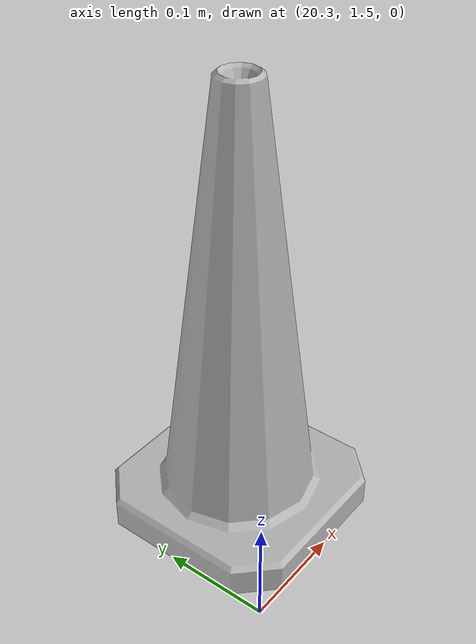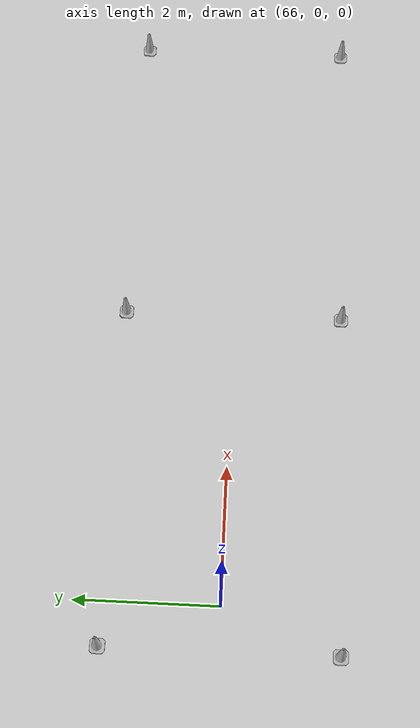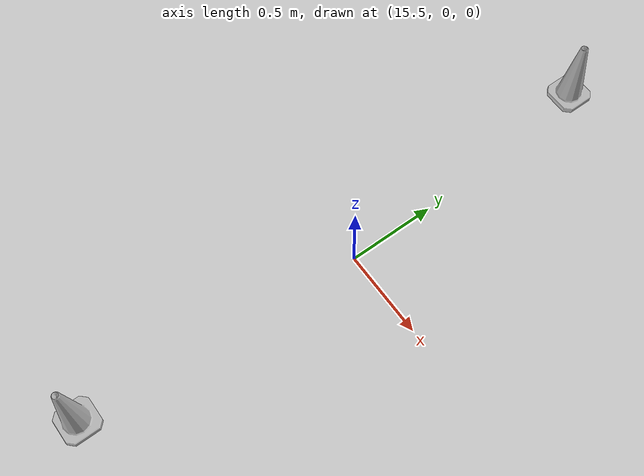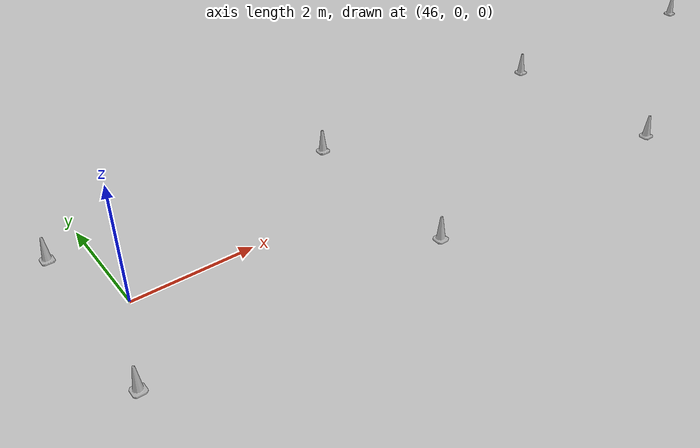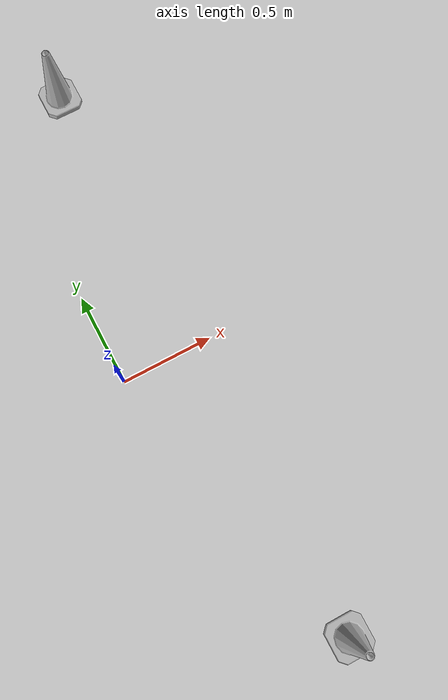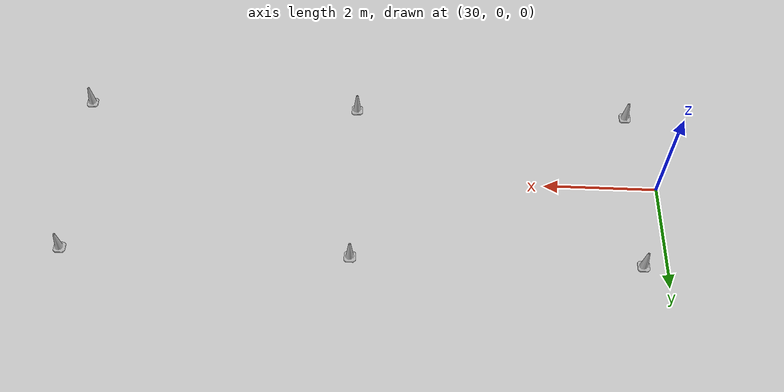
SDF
<sdf version="1.6">
 <world name="default">
  <light name="sun" type="directional">
   <pose>0 0 10 0 -0 0</pose>
   <diffuse>0.8 0.8 0.8 1</diffuse>
   <specular>0.2 0.2 0.2 1</specular>
   <attenuation>
    <range>1000</range>
    <constant>0.9</constant>
    <linear>0.01</linear>
    <quadratic>0.001</quadratic>
   </attenuation>
   <direction>-0.5 0.1 -0.9</direction>
  </light>
  <model name="ground_plane">
   <static>1</static>
   <link name="link">
    <collision name="collision">
     <geometry><plane><normal>0 0 1</normal><size>100 100</size></plane></geometry>
     <surface><friction><ode><mu>100</mu><mu2>50</mu2></ode></friction></surface>
    </collision>
    <visual name="visual">
     <cast_shadows>0</cast_shadows>
     <geometry><plane><normal>0 0 1</normal><size>100 100</size></plane></geometry>
     <material>
      <script><uri>file://media/materials/scripts/gazebo.material</uri><name>Gazebo/Grey</name></script>
     </material>
    </visual>
   </link>
  </model>
  <gravity>0 0 -9.8</gravity>
  <magnetic_field>6e-06 2.3e-05 -4.2e-05</magnetic_field>
  <atmosphere type="adiabatic"/>
  <physics name="default_physics" default="0" type="ode">
   <max_step_size>0.001</max_step_size>
   <real_time_factor>1</real_time_factor>
   <real_time_update_rate>1000</real_time_update_rate>
  </physics>
  <scene><ambient>0.4 0.4 0.4 1</ambient><background>0.7 0.7 0.7 1</background><shadows>1</shadows></scene>
  <spherical_coordinates>
   <surface_model>EARTH_WGS84</surface_model>
   <latitude_deg>0</latitude_deg>
   <longitude_deg>0</longitude_deg>
   <elevation>0</elevation>
   <heading_deg>0</heading_deg>
  </spherical_coordinates>
  <model name="Construction Cone">
   <link name="link">
    <collision name="collision">
     <geometry>
      <mesh><scale>4 4 4</scale><uri>model://construction_cone/meshes/construction_cone.dae</uri></mesh>
     </geometry>
    </collision>
    <visual name="visual">
     <geometry>
      <mesh><scale>4 4 4</scale><uri>model://construction_cone/meshes/construction_cone.dae</uri></mesh>
     </geometry>
    </visual>
    <inertial>
     <inertia><ixx>1</ixx><ixy>0</ixy><ixz>0</ixz><iyy>1</iyy><iyz>0</iyz><izz>1</izz></inertia>
     <mass>1</mass>
    </inertial>
   </link>
   <pose>0.4 1.6 -5e-06 1e-06 -0 0</pose>
  </model>
  <model name="Construction Cone_0">
   <link name="link">
    <collision name="collision">
     <geometry>
      <mesh><scale>4 4 4</scale><uri>model://construction_cone/meshes/construction_cone.dae</uri></mesh>
     </geometry>
    </collision>
    <visual name="visual">
     <geometry>
      <mesh><scale>4 4 4</scale><uri>model://construction_cone/meshes/construction_cone.dae</uri></mesh>
     </geometry>
    </visual>
    <inertial>
     <inertia><ixx>1</ixx><ixy>0</ixy><ixz>0</ixz><iyy>1</iyy><iyz>0</iyz><izz>1</izz></inertia>
     <mass>1</mass>
    </inertial>
   </link>
   <pose>0.4 -1.6 -3e-06 1e-06 -1e-06 0</pose>
  </model>
  <model name="Construction Cone_1">
   <link name="link">
    <collision name="collision">
     <geometry>
      <mesh><scale>4 4 4</scale><uri>model://construction_cone/meshes/construction_cone.dae</uri></mesh>
     </geometry>
    </collision>
    <visual name="visual">
     <geometry>
      <mesh><scale>4 4 4</scale><uri>model://construction_cone/meshes/construction_cone.dae</uri></mesh>
     </geometry>
    </visual>
    <inertial>
     <inertia><ixx>1</ixx><ixy>0</ixy><ixz>0</ixz><iyy>1</iyy><iyz>0</iyz><izz>1</izz></inertia>
     <mass>1</mass>
    </inertial>
   </link>
   <pose>5.4 1.6 -0 -1e-06 1e-06 0</pose>
  </model>
  <model name="Construction Cone_2">
   <link name="link">
    <collision name="collision">
     <geometry>
      <mesh><scale>4 4 4</scale><uri>model://construction_cone/meshes/construction_cone.dae</uri></mesh>
     </geometry>
    </collision>
    <visual name="visual">
     <geometry>
      <mesh><scale>4 4 4</scale><uri>model://construction_cone/meshes/construction_cone.dae</uri></mesh>
     </geometry>
    </visual>
    <inertial>
     <inertia><ixx>1</ixx><ixy>0</ixy><ixz>0</ixz><iyy>1</iyy><iyz>0</iyz><izz>1</izz></inertia>
     <mass>1</mass>
    </inertial>
   </link>
   <pose>5.4 -1.6 -3e-06 1e-06 -0 0</pose>
  </model>
  <model name="Construction Cone_3">
   <link name="link">
    <collision name="collision">
     <geometry>
      <mesh><scale>4 4 4</scale><uri>model://construction_cone/meshes/construction_cone.dae</uri></mesh>
     </geometry>
    </collision>
    <visual name="visual">
     <geometry>
      <mesh><scale>4 4 4</scale><uri>model://construction_cone/meshes/construction_cone.dae</uri></mesh>
     </geometry>
    </visual>
    <inertial>
     <inertia><ixx>1</ixx><ixy>0</ixy><ixz>0</ixz><iyy>1</iyy><iyz>0</iyz><izz>1</izz></inertia>
     <mass>1</mass>
    </inertial>
   </link>
   <pose>10.4 1.6 -8e-06 -1e-06 8e-06 -0</pose>
  </model>
  <model name="Construction Cone_4">
   <link name="link">
    <collision name="collision">
     <geometry>
      <mesh><scale>4 4 4</scale><uri>model://construction_cone/meshes/construction_cone.dae</uri></mesh>
     </geometry>
    </collision>
    <visual name="visual">
     <geometry>
      <mesh><scale>4 4 4</scale><uri>model://construction_cone/meshes/construction_cone.dae</uri></mesh>
     </geometry>
    </visual>
    <inertial>
     <inertia><ixx>1</ixx><ixy>0</ixy><ixz>0</ixz><iyy>1</iyy><iyz>0</iyz><izz>1</izz></inertia>
     <mass>1</mass>
    </inertial>
   </link>
   <pose>10.4 -1.6 -7e-06 1e-06 4e-06 0</pose>
  </model>
  <model name="Construction Cone_5">
   <link name="link">
    <collision name="collision">
     <geometry>
      <mesh><scale>4 4 4</scale><uri>model://construction_cone/meshes/construction_cone.dae</uri></mesh>
     </geometry>
    </collision>
    <visual name="visual">
     <geometry>
      <mesh><scale>4 4 4</scale><uri>model://construction_cone/meshes/construction_cone.dae</uri></mesh>
     </geometry>
    </visual>
    <inertial>
     <inertia><ixx>1</ixx><ixy>0</ixy><ixz>0</ixz><iyy>1</iyy><iyz>0</iyz><izz>1</izz></inertia>
     <mass>1</mass>
    </inertial>
   </link>
   <pose>15.4 1.6 -7e-06 3e-06 -1e-06 0</pose>
  </model>
  <model name="Construction Cone_6">
   <link name="link">
    <collision name="collision">
     <geometry>
      <mesh><scale>4 4 4</scale><uri>model://construction_cone/meshes/construction_cone.dae</uri></mesh>
     </geometry>
    </collision>
    <visual name="visual">
     <geometry>
      <mesh><scale>4 4 4</scale><uri>model://construction_cone/meshes/construction_cone.dae</uri></mesh>
     </geometry>
    </visual>
    <inertial>
     <inertia><ixx>1</ixx><ixy>0</ixy><ixz>0</ixz><iyy>1</iyy><iyz>0</iyz><izz>1</izz></inertia>
     <mass>1</mass>
    </inertial>
   </link>
   <pose>20.4 1.6 -9e-06 5e-06 -2e-06 -0</pose>
  </model>
  <model name="Construction Cone_7">
   <link name="link">
    <collision name="collision">
     <geometry>
      <mesh><scale>4 4 4</scale><uri>model://construction_cone/meshes/construction_cone.dae</uri></mesh>
     </geometry>
    </collision>
    <visual name="visual">
     <geometry>
      <mesh><scale>4 4 4</scale><uri>model://construction_cone/meshes/construction_cone.dae</uri></mesh>
     </geometry>
    </visual>
    <inertial>
     <inertia><ixx>1</ixx><ixy>0</ixy><ixz>0</ixz><iyy>1</iyy><iyz>0</iyz><izz>1</izz></inertia>
     <mass>1</mass>
    </inertial>
   </link>
   <pose>15.4 -1.6 -2e-06 2e-06 -2e-06 -0</pose>
  </model>
  <model name="Construction Cone_8">
   <link name="link">
    <collision name="collision">
     <geometry>
      <mesh><scale>4 4 4</scale><uri>model://construction_cone/meshes/construction_cone.dae</uri></mesh>
     </geometry>
    </collision>
    <visual name="visual">
     <geometry>
      <mesh><scale>4 4 4</scale><uri>model://construction_cone/meshes/construction_cone.dae</uri></mesh>
     </geometry>
    </visual>
    <inertial>
     <inertia><ixx>1</ixx><ixy>0</ixy><ixz>0</ixz><iyy>1</iyy><iyz>0</iyz><izz>1</izz></inertia>
     <mass>1</mass>
    </inertial>
   </link>
   <pose>25.4 1.6 -1e-06 0 -1e-06 0</pose>
  </model>
  <model name="Construction Cone_9">
   <link name="link">
    <collision name="collision">
     <geometry>
      <mesh><scale>4 4 4</scale><uri>model://construction_cone/meshes/construction_cone.dae</uri></mesh>
     </geometry>
    </collision>
    <visual name="visual">
     <geometry>
      <mesh><scale>4 4 4</scale><uri>model://construction_cone/meshes/construction_cone.dae</uri></mesh>
     </geometry>
    </visual>
    <inertial>
     <inertia><ixx>1</ixx><ixy>0</ixy><ixz>0</ixz><iyy>1</iyy><iyz>0</iyz><izz>1</izz></inertia>
     <mass>1</mass>
    </inertial>
   </link>
   <pose>30.4 1.6 -7e-06 3e-06 -1e-06 0</pose>
  </model>
  <model name="Construction Cone_10">
   <link name="link">
    <collision name="collision">
     <geometry>
      <mesh><scale>4 4 4</scale><uri>model://construction_cone/meshes/construction_cone.dae</uri></mesh>
     </geometry>
    </collision>
    <visual name="visual">
     <geometry>
      <mesh><scale>4 4 4</scale><uri>model://construction_cone/meshes/construction_cone.dae</uri></mesh>
     </geometry>
    </visual>
    <inertial>
     <inertia><ixx>1</ixx><ixy>0</ixy><ixz>0</ixz><iyy>1</iyy><iyz>0</iyz><izz>1</izz></inertia>
     <mass>1</mass>
    </inertial>
   </link>
   <pose>35.4 1.6 -9e-06 2e-06 -0 0</pose>
  </model>
  <model name="Construction Cone_11">
   <link name="link">
    <collision name="collision">
     <geometry>
      <mesh><scale>4 4 4</scale><uri>model://construction_cone/meshes/construction_cone.dae</uri></mesh>
     </geometry>
    </collision>
    <visual name="visual">
     <geometry>
      <mesh><scale>4 4 4</scale><uri>model://construction_cone/meshes/construction_cone.dae</uri></mesh>
     </geometry>
    </visual>
    <inertial>
     <inertia><ixx>1</ixx><ixy>0</ixy><ixz>0</ixz><iyy>1</iyy><iyz>0</iyz><izz>1</izz></inertia>
     <mass>1</mass>
    </inertial>
   </link>
   <pose>40.4 1.6 -3e-06 1e-06 1e-06 0</pose>
  </model>
  <model name="Construction Cone_12">
   <link name="link">
    <collision name="collision">
     <geometry>
      <mesh><scale>4 4 4</scale><uri>model://construction_cone/meshes/construction_cone.dae</uri></mesh>
     </geometry>
    </collision>
    <visual name="visual">
     <geometry>
      <mesh><scale>4 4 4</scale><uri>model://construction_cone/meshes/construction_cone.dae</uri></mesh>
     </geometry>
    </visual>
    <inertial>
     <inertia><ixx>1</ixx><ixy>0</ixy><ixz>0</ixz><iyy>1</iyy><iyz>0</iyz><izz>1</izz></inertia>
     <mass>1</mass>
    </inertial>
   </link>
   <pose>45.4 1.6 -1e-06 2e-06 1e-06 0</pose>
  </model>
  <model name="Construction Cone_13">
   <link name="link">
    <collision name="collision">
     <geometry>
      <mesh><scale>4 4 4</scale><uri>model://construction_cone/meshes/construction_cone.dae</uri></mesh>
     </geometry>
    </collision>
    <visual name="visual">
     <geometry>
      <mesh><scale>4 4 4</scale><uri>model://construction_cone/meshes/construction_cone.dae</uri></mesh>
     </geometry>
    </visual>
    <inertial>
     <inertia><ixx>1</ixx><ixy>0</ixy><ixz>0</ixz><iyy>1</iyy><iyz>0</iyz><izz>1</izz></inertia>
     <mass>1</mass>
    </inertial>
   </link>
   <pose>50.4 1.6 -2e-06 1e-06 -0 0</pose>
  </model>
  <model name="Construction Cone_14">
   <link name="link">
    <collision name="collision">
     <geometry>
      <mesh><scale>4 4 4</scale><uri>model://construction_cone/meshes/construction_cone.dae</uri></mesh>
     </geometry>
    </collision>
    <visual name="visual">
     <geometry>
      <mesh><scale>4 4 4</scale><uri>model://construction_cone/meshes/construction_cone.dae</uri></mesh>
     </geometry>
    </visual>
    <inertial>
     <inertia><ixx>1</ixx><ixy>0</ixy><ixz>0</ixz><iyy>1</iyy><iyz>0</iyz><izz>1</izz></inertia>
     <mass>1</mass>
    </inertial>
   </link>
   <pose>55.4 1.6 -2e-06 1e-06 -0 0</pose>
  </model>
  <model name="Construction Cone_15">
   <link name="link">
    <collision name="collision">
     <geometry>
      <mesh><scale>4 4 4</scale><uri>model://construction_cone/meshes/construction_cone.dae</uri></mesh>
     </geometry>
    </collision>
    <visual name="visual">
     <geometry>
      <mesh><scale>4 4 4</scale><uri>model://construction_cone/meshes/construction_cone.dae</uri></mesh>
     </geometry>
    </visual>
    <inertial>
     <inertia><ixx>1</ixx><ixy>0</ixy><ixz>0</ixz><iyy>1</iyy><iyz>0</iyz><izz>1</izz></inertia>
     <mass>1</mass>
    </inertial>
   </link>
   <pose>60.4 1.6 -0 0 -0 0</pose>
  </model>
  <model name="Construction Cone_16">
   <link name="link">
    <collision name="collision">
     <geometry>
      <mesh><scale>4 4 4</scale><uri>model://construction_cone/meshes/construction_cone.dae</uri></mesh>
     </geometry>
    </collision>
    <visual name="visual">
     <geometry>
      <mesh><scale>4 4 4</scale><uri>model://construction_cone/meshes/construction_cone.dae</uri></mesh>
     </geometry>
    </visual>
    <inertial>
     <inertia><ixx>1</ixx><ixy>0</ixy><ixz>0</ixz><iyy>1</iyy><iyz>0</iyz><izz>1</izz></inertia>
     <mass>1</mass>
    </inertial>
   </link>
   <pose>65.4 1.6 -8e-06 1e-06 -0 0</pose>
  </model>
  <model name="Construction Cone_17">
   <link name="link">
    <collision name="collision">
     <geometry>
      <mesh><scale>4 4 4</scale><uri>model://construction_cone/meshes/construction_cone.dae</uri></mesh>
     </geometry>
    </collision>
    <visual name="visual">
     <geometry>
      <mesh><scale>4 4 4</scale><uri>model://construction_cone/meshes/construction_cone.dae</uri></mesh>
     </geometry>
    </visual>
    <inertial>
     <inertia><ixx>1</ixx><ixy>0</ixy><ixz>0</ixz><iyy>1</iyy><iyz>0</iyz><izz>1</izz></inertia>
     <mass>1</mass>
    </inertial>
   </link>
   <pose>70.4 1.6 -2e-06 2e-06 -1e-06 -0</pose>
  </model>
  <model name="Construction Cone_18">
   <link name="link">
    <collision name="collision">
     <geometry>
      <mesh><scale>4 4 4</scale><uri>model://construction_cone/meshes/construction_cone.dae</uri></mesh>
     </geometry>
    </collision>
    <visual name="visual">
     <geometry>
      <mesh><scale>4 4 4</scale><uri>model://construction_cone/meshes/construction_cone.dae</uri></mesh>
     </geometry>
    </visual>
    <inertial>
     <inertia><ixx>1</ixx><ixy>0</ixy><ixz>0</ixz><iyy>1</iyy><iyz>0</iyz><izz>1</izz></inertia>
     <mass>1</mass>
    </inertial>
   </link>
   <pose>75.4 1.6 -6e-06 0 1e-06 0</pose>
  </model>
  <model name="Construction Cone_7_clone">
   <link name="link">
    <collision name="collision">
     <geometry>
      <mesh><scale>4 4 4</scale><uri>model://construction_cone/meshes/construction_cone.dae</uri></mesh>
     </geometry>
    </collision>
    <visual name="visual">
     <geometry>
      <mesh><scale>4 4 4</scale><uri>model://construction_cone/meshes/construction_cone.dae</uri></mesh>
     </geometry>
    </visual>
    <inertial>
     <inertia><ixx>1</ixx><ixy>0</ixy><ixz>0</ixz><iyy>1</iyy><iyz>0</iyz><izz>1</izz></inertia>
     <mass>1</mass>
    </inertial>
   </link>
   <pose>20.4 -1.6 -7e-06 2e-06 -1e-06 -0</pose>
  </model>
  <model name="Construction Cone_7_clone_clone">
   <link name="link">
    <collision name="collision">
     <geometry>
      <mesh><scale>4 4 4</scale><uri>model://construction_cone/meshes/construction_cone.dae</uri></mesh>
     </geometry>
    </collision>
    <visual name="visual">
     <geometry>
      <mesh><scale>4 4 4</scale><uri>model://construction_cone/meshes/construction_cone.dae</uri></mesh>
     </geometry>
    </visual>
    <inertial>
     <inertia><ixx>1</ixx><ixy>0</ixy><ixz>0</ixz><iyy>1</iyy><iyz>0</iyz><izz>1</izz></inertia>
     <mass>1</mass>
    </inertial>
   </link>
   <pose>25.4 -1.6 0 1e-06 5e-06 0</pose>
  </model>
  <model name="Construction Cone_7_clone_clone_0">
   <link name="link">
    <collision name="collision">
     <geometry>
      <mesh><scale>4 4 4</scale><uri>model://construction_cone/meshes/construction_cone.dae</uri></mesh>
     </geometry>
    </collision>
    <visual name="visual">
     <geometry>
      <mesh><scale>4 4 4</scale><uri>model://construction_cone/meshes/construction_cone.dae</uri></mesh>
     </geometry>
    </visual>
    <inertial>
     <inertia><ixx>1</ixx><ixy>0</ixy><ixz>0</ixz><iyy>1</iyy><iyz>0</iyz><izz>1</izz></inertia>
     <mass>1</mass>
    </inertial>
   </link>
   <pose>30.4 -1.6 -8e-06 3e-06 -1e-06 0</pose>
  </model>
  <model name="Construction Cone_7_clone_clone_1">
   <link name="link">
    <collision name="collision">
     <geometry>
      <mesh><scale>4 4 4</scale><uri>model://construction_cone/meshes/construction_cone.dae</uri></mesh>
     </geometry>
    </collision>
    <visual name="visual">
     <geometry>
      <mesh><scale>4 4 4</scale><uri>model://construction_cone/meshes/construction_cone.dae</uri></mesh>
     </geometry>
    </visual>
    <inertial>
     <inertia><ixx>1</ixx><ixy>0</ixy><ixz>0</ixz><iyy>1</iyy><iyz>0</iyz><izz>1</izz></inertia>
     <mass>1</mass>
    </inertial>
   </link>
   <pose>35.4 -1.6 -1e-06 2e-06 -1e-06 -0</pose>
  </model>
  <model name="Construction Cone_7_clone_clone_2">
   <link name="link">
    <collision name="collision">
     <geometry>
      <mesh><scale>4 4 4</scale><uri>model://construction_cone/meshes/construction_cone.dae</uri></mesh>
     </geometry>
    </collision>
    <visual name="visual">
     <geometry>
      <mesh><scale>4 4 4</scale><uri>model://construction_cone/meshes/construction_cone.dae</uri></mesh>
     </geometry>
    </visual>
    <inertial>
     <inertia><ixx>1</ixx><ixy>0</ixy><ixz>0</ixz><iyy>1</iyy><iyz>0</iyz><izz>1</izz></inertia>
     <mass>1</mass>
    </inertial>
   </link>
   <pose>40.4 -1.6 -9e-06 -1e-06 -2e-06 0</pose>
  </model>
  <model name="Construction Cone_7_clone_clone_3">
   <link name="link">
    <collision name="collision">
     <geometry>
      <mesh><scale>4 4 4</scale><uri>model://construction_cone/meshes/construction_cone.dae</uri></mesh>
     </geometry>
    </collision>
    <visual name="visual">
     <geometry>
      <mesh><scale>4 4 4</scale><uri>model://construction_cone/meshes/construction_cone.dae</uri></mesh>
     </geometry>
    </visual>
    <inertial>
     <inertia><ixx>1</ixx><ixy>0</ixy><ixz>0</ixz><iyy>1</iyy><iyz>0</iyz><izz>1</izz></inertia>
     <mass>1</mass>
    </inertial>
   </link>
   <pose>45.4 -1.6 -8e-06 4e-06 -0 0</pose>
  </model>
  <model name="Construction Cone_7_clone_clone_4">
   <link name="link">
    <collision name="collision">
     <geometry>
      <mesh><scale>4 4 4</scale><uri>model://construction_cone/meshes/construction_cone.dae</uri></mesh>
     </geometry>
    </collision>
    <visual name="visual">
     <geometry>
      <mesh><scale>4 4 4</scale><uri>model://construction_cone/meshes/construction_cone.dae</uri></mesh>
     </geometry>
    </visual>
    <inertial>
     <inertia><ixx>1</ixx><ixy>0</ixy><ixz>0</ixz><iyy>1</iyy><iyz>0</iyz><izz>1</izz></inertia>
     <mass>1</mass>
    </inertial>
   </link>
   <pose>50.4 -1.6 -0 -1e-06 2e-06 -0</pose>
  </model>
  <model name="Construction Cone_7_clone_clone_5">
   <link name="link">
    <collision name="collision">
     <geometry>
      <mesh><scale>4 4 4</scale><uri>model://construction_cone/meshes/construction_cone.dae</uri></mesh>
     </geometry>
    </collision>
    <visual name="visual">
     <geometry>
      <mesh><scale>4 4 4</scale><uri>model://construction_cone/meshes/construction_cone.dae</uri></mesh>
     </geometry>
    </visual>
    <inertial>
     <inertia><ixx>1</ixx><ixy>0</ixy><ixz>0</ixz><iyy>1</iyy><iyz>0</iyz><izz>1</izz></inertia>
     <mass>1</mass>
    </inertial>
   </link>
   <pose>55.4 -1.6 -9e-06 -2e-06 1e-06 -0</pose>
  </model>
  <model name="Construction Cone_7_clone_clone_6">
   <link name="link">
    <collision name="collision">
     <geometry>
      <mesh><scale>4 4 4</scale><uri>model://construction_cone/meshes/construction_cone.dae</uri></mesh>
     </geometry>
    </collision>
    <visual name="visual">
     <geometry>
      <mesh><scale>4 4 4</scale><uri>model://construction_cone/meshes/construction_cone.dae</uri></mesh>
     </geometry>
    </visual>
    <inertial>
     <inertia><ixx>1</ixx><ixy>0</ixy><ixz>0</ixz><iyy>1</iyy><iyz>0</iyz><izz>1</izz></inertia>
     <mass>1</mass>
    </inertial>
   </link>
   <pose>60.4 -1.6 -6e-06 1e-06 -1e-06 0</pose>
  </model>
  <model name="Construction Cone_7_clone_clone_7">
   <link name="link">
    <collision name="collision">
     <geometry>
      <mesh><scale>4 4 4</scale><uri>model://construction_cone/meshes/construction_cone.dae</uri></mesh>
     </geometry>
    </collision>
    <visual name="visual">
     <geometry>
      <mesh><scale>4 4 4</scale><uri>model://construction_cone/meshes/construction_cone.dae</uri></mesh>
     </geometry>
    </visual>
    <inertial>
     <inertia><ixx>1</ixx><ixy>0</ixy><ixz>0</ixz><iyy>1</iyy><iyz>0</iyz><izz>1</izz></inertia>
     <mass>1</mass>
    </inertial>
   </link>
   <pose>65.4 -1.6 -1e-06 2e-06 -0 0</pose>
  </model>
  <model name="Construction Cone_7_clone_clone_8">
   <link name="link">
    <collision name="collision">
     <geometry>
      <mesh><scale>4 4 4</scale><uri>model://construction_cone/meshes/construction_cone.dae</uri></mesh>
     </geometry>
    </collision>
    <visual name="visual">
     <geometry>
      <mesh><scale>4 4 4</scale><uri>model://construction_cone/meshes/construction_cone.dae</uri></mesh>
     </geometry>
    </visual>
    <inertial>
     <inertia><ixx>1</ixx><ixy>0</ixy><ixz>0</ixz><iyy>1</iyy><iyz>0</iyz><izz>1</izz></inertia>
     <mass>1</mass>
    </inertial>
   </link>
   <pose>70.4 -1.6 0 0 -1e-06 0</pose>
  </model>
  <model name="Construction Cone_7_clone_clone_9">
   <link name="link">
    <collision name="collision">
     <geometry>
      <mesh><scale>4 4 4</scale><uri>model://construction_cone/meshes/construction_cone.dae</uri></mesh>
     </geometry>
    </collision>
    <visual name="visual">
     <geometry>
      <mesh><scale>4 4 4</scale><uri>model://construction_cone/meshes/construction_cone.dae</uri></mesh>
     </geometry>
    </visual>
    <inertial>
     <inertia><ixx>1</ixx><ixy>0</ixy><ixz>0</ixz><iyy>1</iyy><iyz>0</iyz><izz>1</izz></inertia>
     <mass>1</mass>
    </inertial>
   </link>
   <pose>75.4 -1.6 -7e-06 1e-06 -1e-06 0</pose>
  </model>
 </world>
</sdf>
